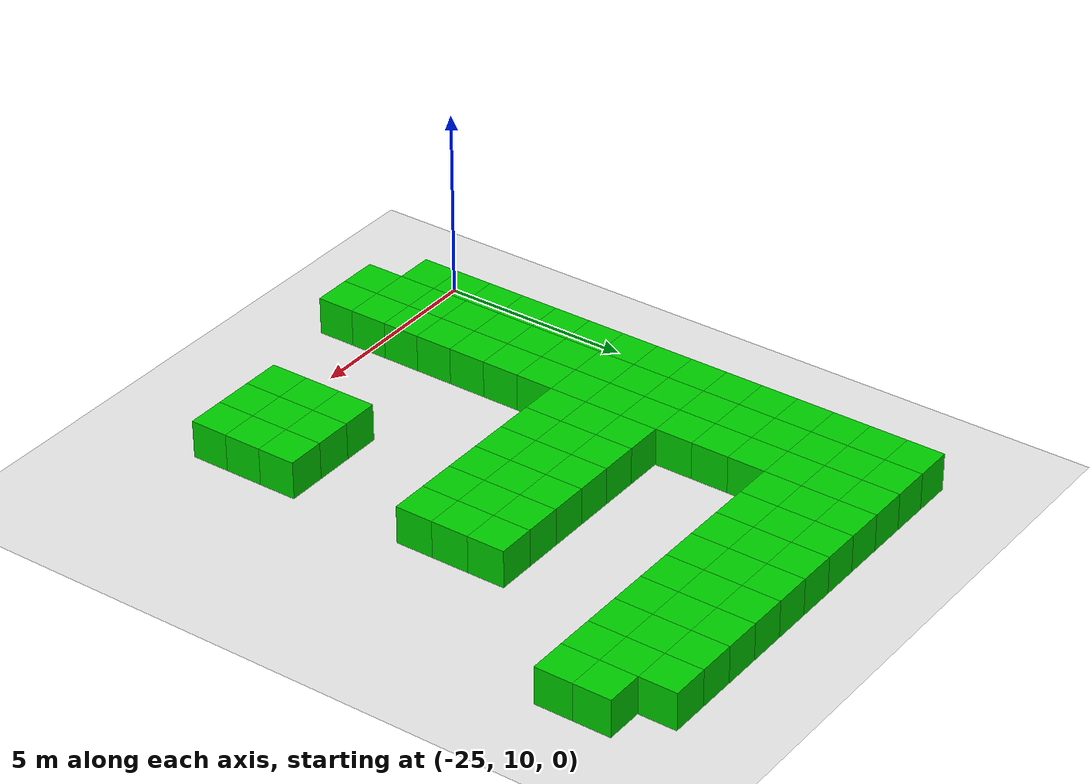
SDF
<sdf version="1.6">
 <world name="generated_maze">
  <model name="ground_plane">
   <static>true</static>
   <link name="link">
    <collision name="collision">
     <geometry><plane><normal>0 0 1</normal><size>100 100</size></plane></geometry>
    </collision>
    <visual name="visual">
     <geometry><plane><normal>0 0 1</normal><size>100 100</size></plane></geometry>
     <material>
      <ambient>0.9 0.9 0.9 1</ambient>
      <diffuse>0.9 0.9 0.9 1</diffuse>
      <specular>0.3 0.3 0.3 1</specular>
     </material>
    </visual>
   </link>
  </model>
  <model name="wall_0_0">
   <static>true</static>
   <pose>-24 24 0.5 0 0 0</pose>
   <link name="link">
    <collision name="collision"><geometry><box><size>1 1 1</size></box></geometry></collision>
    <visual name="visual">
     <geometry><box><size>1 1 1</size></box></geometry>
     <material>
      <ambient>0.0 0.8 0.0 1</ambient>
      <diffuse>0.0 0.8 0.0 1</diffuse>
      <specular>0.1 0.1 0.1 1</specular>
     </material>
    </visual>
   </link>
  </model>
  <model name="wall_0_1">
   <static>true</static>
   <pose>-23 24 0.5 0 0 0</pose>
   <link name="link">
    <collision name="collision"><geometry><box><size>1 1 1</size></box></geometry></collision>
    <visual name="visual">
     <geometry><box><size>1 1 1</size></box></geometry>
     <material>
      <ambient>0.0 0.8 0.0 1</ambient>
      <diffuse>0.0 0.8 0.0 1</diffuse>
      <specular>0.1 0.1 0.1 1</specular>
     </material>
    </visual>
   </link>
  </model>
  <model name="wall_0_2">
   <static>true</static>
   <pose>-22 24 0.5 0 0 0</pose>
   <link name="link">
    <collision name="collision"><geometry><box><size>1 1 1</size></box></geometry></collision>
    <visual name="visual">
     <geometry><box><size>1 1 1</size></box></geometry>
     <material>
      <ambient>0.0 0.8 0.0 1</ambient>
      <diffuse>0.0 0.8 0.0 1</diffuse>
      <specular>0.1 0.1 0.1 1</specular>
     </material>
    </visual>
   </link>
  </model>
  <model name="wall_0_3">
   <static>true</static>
   <pose>-21 24 0.5 0 0 0</pose>
   <link name="link">
    <collision name="collision"><geometry><box><size>1 1 1</size></box></geometry></collision>
    <visual name="visual">
     <geometry><box><size>1 1 1</size></box></geometry>
     <material>
      <ambient>0.0 0.8 0.0 1</ambient>
      <diffuse>0.0 0.8 0.0 1</diffuse>
      <specular>0.1 0.1 0.1 1</specular>
     </material>
    </visual>
   </link>
  </model>
  <model name="wall_0_4">
   <static>true</static>
   <pose>-20 24 0.5 0 0 0</pose>
   <link name="link">
    <collision name="collision"><geometry><box><size>1 1 1</size></box></geometry></collision>
    <visual name="visual">
     <geometry><box><size>1 1 1</size></box></geometry>
     <material>
      <ambient>0.0 0.8 0.0 1</ambient>
      <diffuse>0.0 0.8 0.0 1</diffuse>
      <specular>0.1 0.1 0.1 1</specular>
     </material>
    </visual>
   </link>
  </model>
  <model name="wall_0_5">
   <static>true</static>
   <pose>-19 24 0.5 0 0 0</pose>
   <link name="link">
    <collision name="collision"><geometry><box><size>1 1 1</size></box></geometry></collision>
    <visual name="visual">
     <geometry><box><size>1 1 1</size></box></geometry>
     <material>
      <ambient>0.0 0.8 0.0 1</ambient>
      <diffuse>0.0 0.8 0.0 1</diffuse>
      <specular>0.1 0.1 0.1 1</specular>
     </material>
    </visual>
   </link>
  </model>
  <model name="wall_0_6">
   <static>true</static>
   <pose>-18 24 0.5 0 0 0</pose>
   <link name="link">
    <collision name="collision"><geometry><box><size>1 1 1</size></box></geometry></collision>
    <visual name="visual">
     <geometry><box><size>1 1 1</size></box></geometry>
     <material>
      <ambient>0.0 0.8 0.0 1</ambient>
      <diffuse>0.0 0.8 0.0 1</diffuse>
      <specular>0.1 0.1 0.1 1</specular>
     </material>
    </visual>
   </link>
  </model>
  <model name="wall_0_7">
   <static>true</static>
   <pose>-17 24 0.5 0 0 0</pose>
   <link name="link">
    <collision name="collision"><geometry><box><size>1 1 1</size></box></geometry></collision>
    <visual name="visual">
     <geometry><box><size>1 1 1</size></box></geometry>
     <material>
      <ambient>0.0 0.8 0.0 1</ambient>
      <diffuse>0.0 0.8 0.0 1</diffuse>
      <specular>0.1 0.1 0.1 1</specular>
     </material>
    </visual>
   </link>
  </model>
  <model name="wall_0_8">
   <static>true</static>
   <pose>-16 24 0.5 0 0 0</pose>
   <link name="link">
    <collision name="collision"><geometry><box><size>1 1 1</size></box></geometry></collision>
    <visual name="visual">
     <geometry><box><size>1 1 1</size></box></geometry>
     <material>
      <ambient>0.0 0.8 0.0 1</ambient>
      <diffuse>0.0 0.8 0.0 1</diffuse>
      <specular>0.1 0.1 0.1 1</specular>
     </material>
    </visual>
   </link>
  </model>
  <model name="wall_0_9">
   <static>true</static>
   <pose>-15 24 0.5 0 0 0</pose>
   <link name="link">
    <collision name="collision"><geometry><box><size>1 1 1</size></box></geometry></collision>
    <visual name="visual">
     <geometry><box><size>1 1 1</size></box></geometry>
     <material>
      <ambient>0.0 0.8 0.0 1</ambient>
      <diffuse>0.0 0.8 0.0 1</diffuse>
      <specular>0.1 0.1 0.1 1</specular>
     </material>
    </visual>
   </link>
  </model>
  <model name="wall_0_10">
   <static>true</static>
   <pose>-14 24 0.5 0 0 0</pose>
   <link name="link">
    <collision name="collision"><geometry><box><size>1 1 1</size></box></geometry></collision>
    <visual name="visual">
     <geometry><box><size>1 1 1</size></box></geometry>
     <material>
      <ambient>0.0 0.8 0.0 1</ambient>
      <diffuse>0.0 0.8 0.0 1</diffuse>
      <specular>0.1 0.1 0.1 1</specular>
     </material>
    </visual>
   </link>
  </model>
  <model name="wall_1_0">
   <static>true</static>
   <pose>-24 23 0.5 0 0 0</pose>
   <link name="link">
    <collision name="collision"><geometry><box><size>1 1 1</size></box></geometry></collision>
    <visual name="visual">
     <geometry><box><size>1 1 1</size></box></geometry>
     <material>
      <ambient>0.0 0.8 0.0 1</ambient>
      <diffuse>0.0 0.8 0.0 1</diffuse>
      <specular>0.1 0.1 0.1 1</specular>
     </material>
    </visual>
   </link>
  </model>
  <model name="wall_1_1">
   <static>true</static>
   <pose>-23 23 0.5 0 0 0</pose>
   <link name="link">
    <collision name="collision"><geometry><box><size>1 1 1</size></box></geometry></collision>
    <visual name="visual">
     <geometry><box><size>1 1 1</size></box></geometry>
     <material>
      <ambient>0.0 0.8 0.0 1</ambient>
      <diffuse>0.0 0.8 0.0 1</diffuse>
      <specular>0.1 0.1 0.1 1</specular>
     </material>
    </visual>
   </link>
  </model>
  <model name="wall_1_2">
   <static>true</static>
   <pose>-22 23 0.5 0 0 0</pose>
   <link name="link">
    <collision name="collision"><geometry><box><size>1 1 1</size></box></geometry></collision>
    <visual name="visual">
     <geometry><box><size>1 1 1</size></box></geometry>
     <material>
      <ambient>0.0 0.8 0.0 1</ambient>
      <diffuse>0.0 0.8 0.0 1</diffuse>
      <specular>0.1 0.1 0.1 1</specular>
     </material>
    </visual>
   </link>
  </model>
  <model name="wall_1_3">
   <static>true</static>
   <pose>-21 23 0.5 0 0 0</pose>
   <link name="link">
    <collision name="collision"><geometry><box><size>1 1 1</size></box></geometry></collision>
    <visual name="visual">
     <geometry><box><size>1 1 1</size></box></geometry>
     <material>
      <ambient>0.0 0.8 0.0 1</ambient>
      <diffuse>0.0 0.8 0.0 1</diffuse>
      <specular>0.1 0.1 0.1 1</specular>
     </material>
    </visual>
   </link>
  </model>
  <model name="wall_1_4">
   <static>true</static>
   <pose>-20 23 0.5 0 0 0</pose>
   <link name="link">
    <collision name="collision"><geometry><box><size>1 1 1</size></box></geometry></collision>
    <visual name="visual">
     <geometry><box><size>1 1 1</size></box></geometry>
     <material>
      <ambient>0.0 0.8 0.0 1</ambient>
      <diffuse>0.0 0.8 0.0 1</diffuse>
      <specular>0.1 0.1 0.1 1</specular>
     </material>
    </visual>
   </link>
  </model>
  <model name="wall_1_5">
   <static>true</static>
   <pose>-19 23 0.5 0 0 0</pose>
   <link name="link">
    <collision name="collision"><geometry><box><size>1 1 1</size></box></geometry></collision>
    <visual name="visual">
     <geometry><box><size>1 1 1</size></box></geometry>
     <material>
      <ambient>0.0 0.8 0.0 1</ambient>
      <diffuse>0.0 0.8 0.0 1</diffuse>
      <specular>0.1 0.1 0.1 1</specular>
     </material>
    </visual>
   </link>
  </model>
  <model name="wall_1_6">
   <static>true</static>
   <pose>-18 23 0.5 0 0 0</pose>
   <link name="link">
    <collision name="collision"><geometry><box><size>1 1 1</size></box></geometry></collision>
    <visual name="visual">
     <geometry><box><size>1 1 1</size></box></geometry>
     <material>
      <ambient>0.0 0.8 0.0 1</ambient>
      <diffuse>0.0 0.8 0.0 1</diffuse>
      <specular>0.1 0.1 0.1 1</specular>
     </material>
    </visual>
   </link>
  </model>
  <model name="wall_1_7">
   <static>true</static>
   <pose>-17 23 0.5 0 0 0</pose>
   <link name="link">
    <collision name="collision"><geometry><box><size>1 1 1</size></box></geometry></collision>
    <visual name="visual">
     <geometry><box><size>1 1 1</size></box></geometry>
     <material>
      <ambient>0.0 0.8 0.0 1</ambient>
      <diffuse>0.0 0.8 0.0 1</diffuse>
      <specular>0.1 0.1 0.1 1</specular>
     </material>
    </visual>
   </link>
  </model>
  <model name="wall_1_8">
   <static>true</static>
   <pose>-16 23 0.5 0 0 0</pose>
   <link name="link">
    <collision name="collision"><geometry><box><size>1 1 1</size></box></geometry></collision>
    <visual name="visual">
     <geometry><box><size>1 1 1</size></box></geometry>
     <material>
      <ambient>0.0 0.8 0.0 1</ambient>
      <diffuse>0.0 0.8 0.0 1</diffuse>
      <specular>0.1 0.1 0.1 1</specular>
     </material>
    </visual>
   </link>
  </model>
  <model name="wall_1_9">
   <static>true</static>
   <pose>-15 23 0.5 0 0 0</pose>
   <link name="link">
    <collision name="collision"><geometry><box><size>1 1 1</size></box></geometry></collision>
    <visual name="visual">
     <geometry><box><size>1 1 1</size></box></geometry>
     <material>
      <ambient>0.0 0.8 0.0 1</ambient>
      <diffuse>0.0 0.8 0.0 1</diffuse>
      <specular>0.1 0.1 0.1 1</specular>
     </material>
    </visual>
   </link>
  </model>
  <model name="wall_1_10">
   <static>true</static>
   <pose>-14 23 0.5 0 0 0</pose>
   <link name="link">
    <collision name="collision"><geometry><box><size>1 1 1</size></box></geometry></collision>
    <visual name="visual">
     <geometry><box><size>1 1 1</size></box></geometry>
     <material>
      <ambient>0.0 0.8 0.0 1</ambient>
      <diffuse>0.0 0.8 0.0 1</diffuse>
      <specular>0.1 0.1 0.1 1</specular>
     </material>
    </visual>
   </link>
  </model>
  <model name="wall_1_11">
   <static>true</static>
   <pose>-13 23 0.5 0 0 0</pose>
   <link name="link">
    <collision name="collision"><geometry><box><size>1 1 1</size></box></geometry></collision>
    <visual name="visual">
     <geometry><box><size>1 1 1</size></box></geometry>
     <material>
      <ambient>0.0 0.8 0.0 1</ambient>
      <diffuse>0.0 0.8 0.0 1</diffuse>
      <specular>0.1 0.1 0.1 1</specular>
     </material>
    </visual>
   </link>
  </model>
  <model name="wall_2_0">
   <static>true</static>
   <pose>-24 22 0.5 0 0 0</pose>
   <link name="link">
    <collision name="collision"><geometry><box><size>1 1 1</size></box></geometry></collision>
    <visual name="visual">
     <geometry><box><size>1 1 1</size></box></geometry>
     <material>
      <ambient>0.0 0.8 0.0 1</ambient>
      <diffuse>0.0 0.8 0.0 1</diffuse>
      <specular>0.1 0.1 0.1 1</specular>
     </material>
    </visual>
   </link>
  </model>
  <model name="wall_2_1">
   <static>true</static>
   <pose>-23 22 0.5 0 0 0</pose>
   <link name="link">
    <collision name="collision"><geometry><box><size>1 1 1</size></box></geometry></collision>
    <visual name="visual">
     <geometry><box><size>1 1 1</size></box></geometry>
     <material>
      <ambient>0.0 0.8 0.0 1</ambient>
      <diffuse>0.0 0.8 0.0 1</diffuse>
      <specular>0.1 0.1 0.1 1</specular>
     </material>
    </visual>
   </link>
  </model>
  <model name="wall_2_2">
   <static>true</static>
   <pose>-22 22 0.5 0 0 0</pose>
   <link name="link">
    <collision name="collision"><geometry><box><size>1 1 1</size></box></geometry></collision>
    <visual name="visual">
     <geometry><box><size>1 1 1</size></box></geometry>
     <material>
      <ambient>0.0 0.8 0.0 1</ambient>
      <diffuse>0.0 0.8 0.0 1</diffuse>
      <specular>0.1 0.1 0.1 1</specular>
     </material>
    </visual>
   </link>
  </model>
  <model name="wall_2_3">
   <static>true</static>
   <pose>-21 22 0.5 0 0 0</pose>
   <link name="link">
    <collision name="collision"><geometry><box><size>1 1 1</size></box></geometry></collision>
    <visual name="visual">
     <geometry><box><size>1 1 1</size></box></geometry>
     <material>
      <ambient>0.0 0.8 0.0 1</ambient>
      <diffuse>0.0 0.8 0.0 1</diffuse>
      <specular>0.1 0.1 0.1 1</specular>
     </material>
    </visual>
   </link>
  </model>
  <model name="wall_2_4">
   <static>true</static>
   <pose>-20 22 0.5 0 0 0</pose>
   <link name="link">
    <collision name="collision"><geometry><box><size>1 1 1</size></box></geometry></collision>
    <visual name="visual">
     <geometry><box><size>1 1 1</size></box></geometry>
     <material>
      <ambient>0.0 0.8 0.0 1</ambient>
      <diffuse>0.0 0.8 0.0 1</diffuse>
      <specular>0.1 0.1 0.1 1</specular>
     </material>
    </visual>
   </link>
  </model>
  <model name="wall_2_5">
   <static>true</static>
   <pose>-19 22 0.5 0 0 0</pose>
   <link name="link">
    <collision name="collision"><geometry><box><size>1 1 1</size></box></geometry></collision>
    <visual name="visual">
     <geometry><box><size>1 1 1</size></box></geometry>
     <material>
      <ambient>0.0 0.8 0.0 1</ambient>
      <diffuse>0.0 0.8 0.0 1</diffuse>
      <specular>0.1 0.1 0.1 1</specular>
     </material>
    </visual>
   </link>
  </model>
  <model name="wall_2_6">
   <static>true</static>
   <pose>-18 22 0.5 0 0 0</pose>
   <link name="link">
    <collision name="collision"><geometry><box><size>1 1 1</size></box></geometry></collision>
    <visual name="visual">
     <geometry><box><size>1 1 1</size></box></geometry>
     <material>
      <ambient>0.0 0.8 0.0 1</ambient>
      <diffuse>0.0 0.8 0.0 1</diffuse>
      <specular>0.1 0.1 0.1 1</specular>
     </material>
    </visual>
   </link>
  </model>
  <model name="wall_2_7">
   <static>true</static>
   <pose>-17 22 0.5 0 0 0</pose>
   <link name="link">
    <collision name="collision"><geometry><box><size>1 1 1</size></box></geometry></collision>
    <visual name="visual">
     <geometry><box><size>1 1 1</size></box></geometry>
     <material>
      <ambient>0.0 0.8 0.0 1</ambient>
      <diffuse>0.0 0.8 0.0 1</diffuse>
      <specular>0.1 0.1 0.1 1</specular>
     </material>
    </visual>
   </link>
  </model>
  <model name="wall_2_8">
   <static>true</static>
   <pose>-16 22 0.5 0 0 0</pose>
   <link name="link">
    <collision name="collision"><geometry><box><size>1 1 1</size></box></geometry></collision>
    <visual name="visual">
     <geometry><box><size>1 1 1</size></box></geometry>
     <material>
      <ambient>0.0 0.8 0.0 1</ambient>
      <diffuse>0.0 0.8 0.0 1</diffuse>
      <specular>0.1 0.1 0.1 1</specular>
     </material>
    </visual>
   </link>
  </model>
  <model name="wall_2_9">
   <static>true</static>
   <pose>-15 22 0.5 0 0 0</pose>
   <link name="link">
    <collision name="collision"><geometry><box><size>1 1 1</size></box></geometry></collision>
    <visual name="visual">
     <geometry><box><size>1 1 1</size></box></geometry>
     <material>
      <ambient>0.0 0.8 0.0 1</ambient>
      <diffuse>0.0 0.8 0.0 1</diffuse>
      <specular>0.1 0.1 0.1 1</specular>
     </material>
    </visual>
   </link>
  </model>
  <model name="wall_2_10">
   <static>true</static>
   <pose>-14 22 0.5 0 0 0</pose>
   <link name="link">
    <collision name="collision"><geometry><box><size>1 1 1</size></box></geometry></collision>
    <visual name="visual">
     <geometry><box><size>1 1 1</size></box></geometry>
     <material>
      <ambient>0.0 0.8 0.0 1</ambient>
      <diffuse>0.0 0.8 0.0 1</diffuse>
      <specular>0.1 0.1 0.1 1</specular>
     </material>
    </visual>
   </link>
  </model>
  <model name="wall_2_11">
   <static>true</static>
   <pose>-13 22 0.5 0 0 0</pose>
   <link name="link">
    <collision name="collision"><geometry><box><size>1 1 1</size></box></geometry></collision>
    <visual name="visual">
     <geometry><box><size>1 1 1</size></box></geometry>
     <material>
      <ambient>0.0 0.8 0.0 1</ambient>
      <diffuse>0.0 0.8 0.0 1</diffuse>
      <specular>0.1 0.1 0.1 1</specular>
     </material>
    </visual>
   </link>
  </model>
  <model name="wall_3_0">
   <static>true</static>
   <pose>-24 21 0.5 0 0 0</pose>
   <link name="link">
    <collision name="collision"><geometry><box><size>1 1 1</size></box></geometry></collision>
    <visual name="visual">
     <geometry><box><size>1 1 1</size></box></geometry>
     <material>
      <ambient>0.0 0.8 0.0 1</ambient>
      <diffuse>0.0 0.8 0.0 1</diffuse>
      <specular>0.1 0.1 0.1 1</specular>
     </material>
    </visual>
   </link>
  </model>
  <model name="wall_3_1">
   <static>true</static>
   <pose>-23 21 0.5 0 0 0</pose>
   <link name="link">
    <collision name="collision"><geometry><box><size>1 1 1</size></box></geometry></collision>
    <visual name="visual">
     <geometry><box><size>1 1 1</size></box></geometry>
     <material>
      <ambient>0.0 0.8 0.0 1</ambient>
      <diffuse>0.0 0.8 0.0 1</diffuse>
      <specular>0.1 0.1 0.1 1</specular>
     </material>
    </visual>
   </link>
  </model>
  <model name="wall_3_2">
   <static>true</static>
   <pose>-22 21 0.5 0 0 0</pose>
   <link name="link">
    <collision name="collision"><geometry><box><size>1 1 1</size></box></geometry></collision>
    <visual name="visual">
     <geometry><box><size>1 1 1</size></box></geometry>
     <material>
      <ambient>0.0 0.8 0.0 1</ambient>
      <diffuse>0.0 0.8 0.0 1</diffuse>
      <specular>0.1 0.1 0.1 1</specular>
     </material>
    </visual>
   </link>
  </model>
  <model name="wall_4_0">
   <static>true</static>
   <pose>-24 20 0.5 0 0 0</pose>
   <link name="link">
    <collision name="collision"><geometry><box><size>1 1 1</size></box></geometry></collision>
    <visual name="visual">
     <geometry><box><size>1 1 1</size></box></geometry>
     <material>
      <ambient>0.0 0.8 0.0 1</ambient>
      <diffuse>0.0 0.8 0.0 1</diffuse>
      <specular>0.1 0.1 0.1 1</specular>
     </material>
    </visual>
   </link>
  </model>
  <model name="wall_4_1">
   <static>true</static>
   <pose>-23 20 0.5 0 0 0</pose>
   <link name="link">
    <collision name="collision"><geometry><box><size>1 1 1</size></box></geometry></collision>
    <visual name="visual">
     <geometry><box><size>1 1 1</size></box></geometry>
     <material>
      <ambient>0.0 0.8 0.0 1</ambient>
      <diffuse>0.0 0.8 0.0 1</diffuse>
      <specular>0.1 0.1 0.1 1</specular>
     </material>
    </visual>
   </link>
  </model>
  <model name="wall_4_2">
   <static>true</static>
   <pose>-22 20 0.5 0 0 0</pose>
   <link name="link">
    <collision name="collision"><geometry><box><size>1 1 1</size></box></geometry></collision>
    <visual name="visual">
     <geometry><box><size>1 1 1</size></box></geometry>
     <material>
      <ambient>0.0 0.8 0.0 1</ambient>
      <diffuse>0.0 0.8 0.0 1</diffuse>
      <specular>0.1 0.1 0.1 1</specular>
     </material>
    </visual>
   </link>
  </model>
  <model name="wall_5_0">
   <static>true</static>
   <pose>-24 19 0.5 0 0 0</pose>
   <link name="link">
    <collision name="collision"><geometry><box><size>1 1 1</size></box></geometry></collision>
    <visual name="visual">
     <geometry><box><size>1 1 1</size></box></geometry>
     <material>
      <ambient>0.0 0.8 0.0 1</ambient>
      <diffuse>0.0 0.8 0.0 1</diffuse>
      <specular>0.1 0.1 0.1 1</specular>
     </material>
    </visual>
   </link>
  </model>
  <model name="wall_5_1">
   <static>true</static>
   <pose>-23 19 0.5 0 0 0</pose>
   <link name="link">
    <collision name="collision"><geometry><box><size>1 1 1</size></box></geometry></collision>
    <visual name="visual">
     <geometry><box><size>1 1 1</size></box></geometry>
     <material>
      <ambient>0.0 0.8 0.0 1</ambient>
      <diffuse>0.0 0.8 0.0 1</diffuse>
      <specular>0.1 0.1 0.1 1</specular>
     </material>
    </visual>
   </link>
  </model>
  <model name="wall_5_2">
   <static>true</static>
   <pose>-22 19 0.5 0 0 0</pose>
   <link name="link">
    <collision name="collision"><geometry><box><size>1 1 1</size></box></geometry></collision>
    <visual name="visual">
     <geometry><box><size>1 1 1</size></box></geometry>
     <material>
      <ambient>0.0 0.8 0.0 1</ambient>
      <diffuse>0.0 0.8 0.0 1</diffuse>
      <specular>0.1 0.1 0.1 1</specular>
     </material>
    </visual>
   </link>
  </model>
  <model name="wall_6_0">
   <static>true</static>
   <pose>-24 18 0.5 0 0 0</pose>
   <link name="link">
    <collision name="collision"><geometry><box><size>1 1 1</size></box></geometry></collision>
    <visual name="visual">
     <geometry><box><size>1 1 1</size></box></geometry>
     <material>
      <ambient>0.0 0.8 0.0 1</ambient>
      <diffuse>0.0 0.8 0.0 1</diffuse>
      <specular>0.1 0.1 0.1 1</specular>
     </material>
    </visual>
   </link>
  </model>
  <model name="wall_6_1">
   <static>true</static>
   <pose>-23 18 0.5 0 0 0</pose>
   <link name="link">
    <collision name="collision"><geometry><box><size>1 1 1</size></box></geometry></collision>
    <visual name="visual">
     <geometry><box><size>1 1 1</size></box></geometry>
     <material>
      <ambient>0.0 0.8 0.0 1</ambient>
      <diffuse>0.0 0.8 0.0 1</diffuse>
      <specular>0.1 0.1 0.1 1</specular>
     </material>
    </visual>
   </link>
  </model>
  <model name="wall_6_2">
   <static>true</static>
   <pose>-22 18 0.5 0 0 0</pose>
   <link name="link">
    <collision name="collision"><geometry><box><size>1 1 1</size></box></geometry></collision>
    <visual name="visual">
     <geometry><box><size>1 1 1</size></box></geometry>
     <material>
      <ambient>0.0 0.8 0.0 1</ambient>
      <diffuse>0.0 0.8 0.0 1</diffuse>
      <specular>0.1 0.1 0.1 1</specular>
     </material>
    </visual>
   </link>
  </model>
  <model name="wall_6_3">
   <static>true</static>
   <pose>-21 18 0.5 0 0 0</pose>
   <link name="link">
    <collision name="collision"><geometry><box><size>1 1 1</size></box></geometry></collision>
    <visual name="visual">
     <geometry><box><size>1 1 1</size></box></geometry>
     <material>
      <ambient>0.0 0.8 0.0 1</ambient>
      <diffuse>0.0 0.8 0.0 1</diffuse>
      <specular>0.1 0.1 0.1 1</specular>
     </material>
    </visual>
   </link>
  </model>
  <model name="wall_6_4">
   <static>true</static>
   <pose>-20 18 0.5 0 0 0</pose>
   <link name="link">
    <collision name="collision"><geometry><box><size>1 1 1</size></box></geometry></collision>
    <visual name="visual">
     <geometry><box><size>1 1 1</size></box></geometry>
     <material>
      <ambient>0.0 0.8 0.0 1</ambient>
      <diffuse>0.0 0.8 0.0 1</diffuse>
      <specular>0.1 0.1 0.1 1</specular>
     </material>
    </visual>
   </link>
  </model>
  <model name="wall_6_5">
   <static>true</static>
   <pose>-19 18 0.5 0 0 0</pose>
   <link name="link">
    <collision name="collision"><geometry><box><size>1 1 1</size></box></geometry></collision>
    <visual name="visual">
     <geometry><box><size>1 1 1</size></box></geometry>
     <material>
      <ambient>0.0 0.8 0.0 1</ambient>
      <diffuse>0.0 0.8 0.0 1</diffuse>
      <specular>0.1 0.1 0.1 1</specular>
     </material>
    </visual>
   </link>
  </model>
  <model name="wall_6_6">
   <static>true</static>
   <pose>-18 18 0.5 0 0 0</pose>
   <link name="link">
    <collision name="collision"><geometry><box><size>1 1 1</size></box></geometry></collision>
    <visual name="visual">
     <geometry><box><size>1 1 1</size></box></geometry>
     <material>
      <ambient>0.0 0.8 0.0 1</ambient>
      <diffuse>0.0 0.8 0.0 1</diffuse>
      <specular>0.1 0.1 0.1 1</specular>
     </material>
    </visual>
   </link>
  </model>
  <model name="wall_6_7">
   <static>true</static>
   <pose>-17 18 0.5 0 0 0</pose>
   <link name="link">
    <collision name="collision"><geometry><box><size>1 1 1</size></box></geometry></collision>
    <visual name="visual">
     <geometry><box><size>1 1 1</size></box></geometry>
     <material>
      <ambient>0.0 0.8 0.0 1</ambient>
      <diffuse>0.0 0.8 0.0 1</diffuse>
      <specular>0.1 0.1 0.1 1</specular>
     </material>
    </visual>
   </link>
  </model>
  <model name="wall_6_8">
   <static>true</static>
   <pose>-16 18 0.5 0 0 0</pose>
   <link name="link">
    <collision name="collision"><geometry><box><size>1 1 1</size></box></geometry></collision>
    <visual name="visual">
     <geometry><box><size>1 1 1</size></box></geometry>
     <material>
      <ambient>0.0 0.8 0.0 1</ambient>
      <diffuse>0.0 0.8 0.0 1</diffuse>
      <specular>0.1 0.1 0.1 1</specular>
     </material>
    </visual>
   </link>
  </model>
  <model name="wall_7_0">
   <static>true</static>
   <pose>-24 17 0.5 0 0 0</pose>
   <link name="link">
    <collision name="collision"><geometry><box><size>1 1 1</size></box></geometry></collision>
    <visual name="visual">
     <geometry><box><size>1 1 1</size></box></geometry>
     <material>
      <ambient>0.0 0.8 0.0 1</ambient>
      <diffuse>0.0 0.8 0.0 1</diffuse>
      <specular>0.1 0.1 0.1 1</specular>
     </material>
    </visual>
   </link>
  </model>
  <model name="wall_7_1">
   <static>true</static>
   <pose>-23 17 0.5 0 0 0</pose>
   <link name="link">
    <collision name="collision"><geometry><box><size>1 1 1</size></box></geometry></collision>
    <visual name="visual">
     <geometry><box><size>1 1 1</size></box></geometry>
     <material>
      <ambient>0.0 0.8 0.0 1</ambient>
      <diffuse>0.0 0.8 0.0 1</diffuse>
      <specular>0.1 0.1 0.1 1</specular>
     </material>
    </visual>
   </link>
  </model>
  <model name="wall_7_2">
   <static>true</static>
   <pose>-22 17 0.5 0 0 0</pose>
   <link name="link">
    <collision name="collision"><geometry><box><size>1 1 1</size></box></geometry></collision>
    <visual name="visual">
     <geometry><box><size>1 1 1</size></box></geometry>
     <material>
      <ambient>0.0 0.8 0.0 1</ambient>
      <diffuse>0.0 0.8 0.0 1</diffuse>
      <specular>0.1 0.1 0.1 1</specular>
     </material>
    </visual>
   </link>
  </model>
  <model name="wall_7_3">
   <static>true</static>
   <pose>-21 17 0.5 0 0 0</pose>
   <link name="link">
    <collision name="collision"><geometry><box><size>1 1 1</size></box></geometry></collision>
    <visual name="visual">
     <geometry><box><size>1 1 1</size></box></geometry>
     <material>
      <ambient>0.0 0.8 0.0 1</ambient>
      <diffuse>0.0 0.8 0.0 1</diffuse>
      <specular>0.1 0.1 0.1 1</specular>
     </material>
    </visual>
   </link>
  </model>
  <model name="wall_7_4">
   <static>true</static>
   <pose>-20 17 0.5 0 0 0</pose>
   <link name="link">
    <collision name="collision"><geometry><box><size>1 1 1</size></box></geometry></collision>
    <visual name="visual">
     <geometry><box><size>1 1 1</size></box></geometry>
     <material>
      <ambient>0.0 0.8 0.0 1</ambient>
      <diffuse>0.0 0.8 0.0 1</diffuse>
      <specular>0.1 0.1 0.1 1</specular>
     </material>
    </visual>
   </link>
  </model>
  <model name="wall_7_5">
   <static>true</static>
   <pose>-19 17 0.5 0 0 0</pose>
   <link name="link">
    <collision name="collision"><geometry><box><size>1 1 1</size></box></geometry></collision>
    <visual name="visual">
     <geometry><box><size>1 1 1</size></box></geometry>
     <material>
      <ambient>0.0 0.8 0.0 1</ambient>
      <diffuse>0.0 0.8 0.0 1</diffuse>
      <specular>0.1 0.1 0.1 1</specular>
     </material>
    </visual>
   </link>
  </model>
  <model name="wall_7_6">
   <static>true</static>
   <pose>-18 17 0.5 0 0 0</pose>
   <link name="link">
    <collision name="collision"><geometry><box><size>1 1 1</size></box></geometry></collision>
    <visual name="visual">
     <geometry><box><size>1 1 1</size></box></geometry>
     <material>
      <ambient>0.0 0.8 0.0 1</ambient>
      <diffuse>0.0 0.8 0.0 1</diffuse>
      <specular>0.1 0.1 0.1 1</specular>
     </material>
    </visual>
   </link>
  </model>
  <model name="wall_7_7">
   <static>true</static>
   <pose>-17 17 0.5 0 0 0</pose>
   <link name="link">
    <collision name="collision"><geometry><box><size>1 1 1</size></box></geometry></collision>
    <visual name="visual">
     <geometry><box><size>1 1 1</size></box></geometry>
     <material>
      <ambient>0.0 0.8 0.0 1</ambient>
      <diffuse>0.0 0.8 0.0 1</diffuse>
      <specular>0.1 0.1 0.1 1</specular>
     </material>
    </visual>
   </link>
  </model>
  <model name="wall_7_8">
   <static>true</static>
   <pose>-16 17 0.5 0 0 0</pose>
   <link name="link">
    <collision name="collision"><geometry><box><size>1 1 1</size></box></geometry></collision>
    <visual name="visual">
     <geometry><box><size>1 1 1</size></box></geometry>
     <material>
      <ambient>0.0 0.8 0.0 1</ambient>
      <diffuse>0.0 0.8 0.0 1</diffuse>
      <specular>0.1 0.1 0.1 1</specular>
     </material>
    </visual>
   </link>
  </model>
  <model name="wall_8_0">
   <static>true</static>
   <pose>-24 16 0.5 0 0 0</pose>
   <link name="link">
    <collision name="collision"><geometry><box><size>1 1 1</size></box></geometry></collision>
    <visual name="visual">
     <geometry><box><size>1 1 1</size></box></geometry>
     <material>
      <ambient>0.0 0.8 0.0 1</ambient>
      <diffuse>0.0 0.8 0.0 1</diffuse>
      <specular>0.1 0.1 0.1 1</specular>
     </material>
    </visual>
   </link>
  </model>
  <model name="wall_8_1">
   <static>true</static>
   <pose>-23 16 0.5 0 0 0</pose>
   <link name="link">
    <collision name="collision"><geometry><box><size>1 1 1</size></box></geometry></collision>
    <visual name="visual">
     <geometry><box><size>1 1 1</size></box></geometry>
     <material>
      <ambient>0.0 0.8 0.0 1</ambient>
      <diffuse>0.0 0.8 0.0 1</diffuse>
      <specular>0.1 0.1 0.1 1</specular>
     </material>
    </visual>
   </link>
  </model>
  <model name="wall_8_2">
   <static>true</static>
   <pose>-22 16 0.5 0 0 0</pose>
   <link name="link">
    <collision name="collision"><geometry><box><size>1 1 1</size></box></geometry></collision>
    <visual name="visual">
     <geometry><box><size>1 1 1</size></box></geometry>
     <material>
      <ambient>0.0 0.8 0.0 1</ambient>
      <diffuse>0.0 0.8 0.0 1</diffuse>
      <specular>0.1 0.1 0.1 1</specular>
     </material>
    </visual>
   </link>
  </model>
  <model name="wall_8_3">
   <static>true</static>
   <pose>-21 16 0.5 0 0 0</pose>
   <link name="link">
    <collision name="collision"><geometry><box><size>1 1 1</size></box></geometry></collision>
    <visual name="visual">
     <geometry><box><size>1 1 1</size></box></geometry>
     <material>
      <ambient>0.0 0.8 0.0 1</ambient>
      <diffuse>0.0 0.8 0.0 1</diffuse>
      <specular>0.1 0.1 0.1 1</specular>
     </material>
    </visual>
   </link>
  </model>
  <model name="wall_8_4">
   <static>true</static>
   <pose>-20 16 0.5 0 0 0</pose>
   <link name="link">
    <collision name="collision"><geometry><box><size>1 1 1</size></box></geometry></collision>
    <visual name="visual">
     <geometry><box><size>1 1 1</size></box></geometry>
     <material>
      <ambient>0.0 0.8 0.0 1</ambient>
      <diffuse>0.0 0.8 0.0 1</diffuse>
      <specular>0.1 0.1 0.1 1</specular>
     </material>
    </visual>
   </link>
  </model>
  <model name="wall_8_5">
   <static>true</static>
   <pose>-19 16 0.5 0 0 0</pose>
   <link name="link">
    <collision name="collision"><geometry><box><size>1 1 1</size></box></geometry></collision>
    <visual name="visual">
     <geometry><box><size>1 1 1</size></box></geometry>
     <material>
      <ambient>0.0 0.8 0.0 1</ambient>
      <diffuse>0.0 0.8 0.0 1</diffuse>
      <specular>0.1 0.1 0.1 1</specular>
     </material>
    </visual>
   </link>
  </model>
  <model name="wall_8_6">
   <static>true</static>
   <pose>-18 16 0.5 0 0 0</pose>
   <link name="link">
    <collision name="collision"><geometry><box><size>1 1 1</size></box></geometry></collision>
    <visual name="visual">
     <geometry><box><size>1 1 1</size></box></geometry>
     <material>
      <ambient>0.0 0.8 0.0 1</ambient>
      <diffuse>0.0 0.8 0.0 1</diffuse>
      <specular>0.1 0.1 0.1 1</specular>
     </material>
    </visual>
   </link>
  </model>
  <model name="wall_8_7">
   <static>true</static>
   <pose>-17 16 0.5 0 0 0</pose>
   <link name="link">
    <collision name="collision"><geometry><box><size>1 1 1</size></box></geometry></collision>
    <visual name="visual">
     <geometry><box><size>1 1 1</size></box></geometry>
     <material>
      <ambient>0.0 0.8 0.0 1</ambient>
      <diffuse>0.0 0.8 0.0 1</diffuse>
      <specular>0.1 0.1 0.1 1</specular>
     </material>
    </visual>
   </link>
  </model>
  <model name="wall_8_8">
   <static>true</static>
   <pose>-16 16 0.5 0 0 0</pose>
   <link name="link">
    <collision name="collision"><geometry><box><size>1 1 1</size></box></geometry></collision>
    <visual name="visual">
     <geometry><box><size>1 1 1</size></box></geometry>
     <material>
      <ambient>0.0 0.8 0.0 1</ambient>
      <diffuse>0.0 0.8 0.0 1</diffuse>
      <specular>0.1 0.1 0.1 1</specular>
     </material>
    </visual>
   </link>
  </model>
  <model name="wall_9_0">
   <static>true</static>
   <pose>-24 15 0.5 0 0 0</pose>
   <link name="link">
    <collision name="collision"><geometry><box><size>1 1 1</size></box></geometry></collision>
    <visual name="visual">
     <geometry><box><size>1 1 1</size></box></geometry>
     <material>
      <ambient>0.0 0.8 0.0 1</ambient>
      <diffuse>0.0 0.8 0.0 1</diffuse>
      <specular>0.1 0.1 0.1 1</specular>
     </material>
    </visual>
   </link>
  </model>
  <model name="wall_9_1">
   <static>true</static>
   <pose>-23 15 0.5 0 0 0</pose>
   <link name="link">
    <collision name="collision"><geometry><box><size>1 1 1</size></box></geometry></collision>
    <visual name="visual">
     <geometry><box><size>1 1 1</size></box></geometry>
     <material>
      <ambient>0.0 0.8 0.0 1</ambient>
      <diffuse>0.0 0.8 0.0 1</diffuse>
      <specular>0.1 0.1 0.1 1</specular>
     </material>
    </visual>
   </link>
  </model>
  <model name="wall_9_2">
   <static>true</static>
   <pose>-22 15 0.5 0 0 0</pose>
   <link name="link">
    <collision name="collision"><geometry><box><size>1 1 1</size></box></geometry></collision>
    <visual name="visual">
     <geometry><box><size>1 1 1</size></box></geometry>
     <material>
      <ambient>0.0 0.8 0.0 1</ambient>
      <diffuse>0.0 0.8 0.0 1</diffuse>
      <specular>0.1 0.1 0.1 1</specular>
     </material>
    </visual>
   </link>
  </model>
  <model name="wall_10_0">
   <static>true</static>
   <pose>-24 14 0.5 0 0 0</pose>
   <link name="link">
    <collision name="collision"><geometry><box><size>1 1 1</size></box></geometry></collision>
    <visual name="visual">
     <geometry><box><size>1 1 1</size></box></geometry>
     <material>
      <ambient>0.0 0.8 0.0 1</ambient>
      <diffuse>0.0 0.8 0.0 1</diffuse>
      <specular>0.1 0.1 0.1 1</specular>
     </material>
    </visual>
   </link>
  </model>
  <model name="wall_10_1">
   <static>true</static>
   <pose>-23 14 0.5 0 0 0</pose>
   <link name="link">
    <collision name="collision"><geometry><box><size>1 1 1</size></box></geometry></collision>
    <visual name="visual">
     <geometry><box><size>1 1 1</size></box></geometry>
     <material>
      <ambient>0.0 0.8 0.0 1</ambient>
      <diffuse>0.0 0.8 0.0 1</diffuse>
      <specular>0.1 0.1 0.1 1</specular>
     </material>
    </visual>
   </link>
  </model>
  <model name="wall_10_2">
   <static>true</static>
   <pose>-22 14 0.5 0 0 0</pose>
   <link name="link">
    <collision name="collision"><geometry><box><size>1 1 1</size></box></geometry></collision>
    <visual name="visual">
     <geometry><box><size>1 1 1</size></box></geometry>
     <material>
      <ambient>0.0 0.8 0.0 1</ambient>
      <diffuse>0.0 0.8 0.0 1</diffuse>
      <specular>0.1 0.1 0.1 1</specular>
     </material>
    </visual>
   </link>
  </model>
  <model name="wall_11_0">
   <static>true</static>
   <pose>-24 13 0.5 0 0 0</pose>
   <link name="link">
    <collision name="collision"><geometry><box><size>1 1 1</size></box></geometry></collision>
    <visual name="visual">
     <geometry><box><size>1 1 1</size></box></geometry>
     <material>
      <ambient>0.0 0.8 0.0 1</ambient>
      <diffuse>0.0 0.8 0.0 1</diffuse>
      <specular>0.1 0.1 0.1 1</specular>
     </material>
    </visual>
   </link>
  </model>
  <model name="wall_11_1">
   <static>true</static>
   <pose>-23 13 0.5 0 0 0</pose>
   <link name="link">
    <collision name="collision"><geometry><box><size>1 1 1</size></box></geometry></collision>
    <visual name="visual">
     <geometry><box><size>1 1 1</size></box></geometry>
     <material>
      <ambient>0.0 0.8 0.0 1</ambient>
      <diffuse>0.0 0.8 0.0 1</diffuse>
      <specular>0.1 0.1 0.1 1</specular>
     </material>
    </visual>
   </link>
  </model>
  <model name="wall_11_2">
   <static>true</static>
   <pose>-22 13 0.5 0 0 0</pose>
   <link name="link">
    <collision name="collision"><geometry><box><size>1 1 1</size></box></geometry></collision>
    <visual name="visual">
     <geometry><box><size>1 1 1</size></box></geometry>
     <material>
      <ambient>0.0 0.8 0.0 1</ambient>
      <diffuse>0.0 0.8 0.0 1</diffuse>
      <specular>0.1 0.1 0.1 1</specular>
     </material>
    </visual>
   </link>
  </model>
  <model name="wall_12_0">
   <static>true</static>
   <pose>-24 12 0.5 0 0 0</pose>
   <link name="link">
    <collision name="collision"><geometry><box><size>1 1 1</size></box></geometry></collision>
    <visual name="visual">
     <geometry><box><size>1 1 1</size></box></geometry>
     <material>
      <ambient>0.0 0.8 0.0 1</ambient>
      <diffuse>0.0 0.8 0.0 1</diffuse>
      <specular>0.1 0.1 0.1 1</specular>
     </material>
    </visual>
   </link>
  </model>
  <model name="wall_12_1">
   <static>true</static>
   <pose>-23 12 0.5 0 0 0</pose>
   <link name="link">
    <collision name="collision"><geometry><box><size>1 1 1</size></box></geometry></collision>
    <visual name="visual">
     <geometry><box><size>1 1 1</size></box></geometry>
     <material>
      <ambient>0.0 0.8 0.0 1</ambient>
      <diffuse>0.0 0.8 0.0 1</diffuse>
      <specular>0.1 0.1 0.1 1</specular>
     </material>
    </visual>
   </link>
  </model>
  <model name="wall_12_2">
   <static>true</static>
   <pose>-22 12 0.5 0 0 0</pose>
   <link name="link">
    <collision name="collision"><geometry><box><size>1 1 1</size></box></geometry></collision>
    <visual name="visual">
     <geometry><box><size>1 1 1</size></box></geometry>
     <material>
      <ambient>0.0 0.8 0.0 1</ambient>
      <diffuse>0.0 0.8 0.0 1</diffuse>
      <specular>0.1 0.1 0.1 1</specular>
     </material>
    </visual>
   </link>
  </model>
  <model name="wall_12_6">
   <static>true</static>
   <pose>-18 12 0.5 0 0 0</pose>
   <link name="link">
    <collision name="collision"><geometry><box><size>1 1 1</size></box></geometry></collision>
    <visual name="visual">
     <geometry><box><size>1 1 1</size></box></geometry>
     <material>
      <ambient>0.0 0.8 0.0 1</ambient>
      <diffuse>0.0 0.8 0.0 1</diffuse>
      <specular>0.1 0.1 0.1 1</specular>
     </material>
    </visual>
   </link>
  </model>
  <model name="wall_12_7">
   <static>true</static>
   <pose>-17 12 0.5 0 0 0</pose>
   <link name="link">
    <collision name="collision"><geometry><box><size>1 1 1</size></box></geometry></collision>
    <visual name="visual">
     <geometry><box><size>1 1 1</size></box></geometry>
     <material>
      <ambient>0.0 0.8 0.0 1</ambient>
      <diffuse>0.0 0.8 0.0 1</diffuse>
      <specular>0.1 0.1 0.1 1</specular>
     </material>
    </visual>
   </link>
  </model>
  <model name="wall_12_8">
   <static>true</static>
   <pose>-16 12 0.5 0 0 0</pose>
   <link name="link">
    <collision name="collision"><geometry><box><size>1 1 1</size></box></geometry></collision>
    <visual name="visual">
     <geometry><box><size>1 1 1</size></box></geometry>
     <material>
      <ambient>0.0 0.8 0.0 1</ambient>
      <diffuse>0.0 0.8 0.0 1</diffuse>
      <specular>0.1 0.1 0.1 1</specular>
     </material>
    </visual>
   </link>
  </model>
  <model name="wall_13_0">
   <static>true</static>
   <pose>-24 11 0.5 0 0 0</pose>
   <link name="link">
    <collision name="collision"><geometry><box><size>1 1 1</size></box></geometry></collision>
    <visual name="visual">
     <geometry><box><size>1 1 1</size></box></geometry>
     <material>
      <ambient>0.0 0.8 0.0 1</ambient>
      <diffuse>0.0 0.8 0.0 1</diffuse>
      <specular>0.1 0.1 0.1 1</specular>
     </material>
    </visual>
   </link>
  </model>
  <model name="wall_13_1">
   <static>true</static>
   <pose>-23 11 0.5 0 0 0</pose>
   <link name="link">
    <collision name="collision"><geometry><box><size>1 1 1</size></box></geometry></collision>
    <visual name="visual">
     <geometry><box><size>1 1 1</size></box></geometry>
     <material>
      <ambient>0.0 0.8 0.0 1</ambient>
      <diffuse>0.0 0.8 0.0 1</diffuse>
      <specular>0.1 0.1 0.1 1</specular>
     </material>
    </visual>
   </link>
  </model>
  <model name="wall_13_2">
   <static>true</static>
   <pose>-22 11 0.5 0 0 0</pose>
   <link name="link">
    <collision name="collision"><geometry><box><size>1 1 1</size></box></geometry></collision>
    <visual name="visual">
     <geometry><box><size>1 1 1</size></box></geometry>
     <material>
      <ambient>0.0 0.8 0.0 1</ambient>
      <diffuse>0.0 0.8 0.0 1</diffuse>
      <specular>0.1 0.1 0.1 1</specular>
     </material>
    </visual>
   </link>
  </model>
  <model name="wall_13_6">
   <static>true</static>
   <pose>-18 11 0.5 0 0 0</pose>
   <link name="link">
    <collision name="collision"><geometry><box><size>1 1 1</size></box></geometry></collision>
    <visual name="visual">
     <geometry><box><size>1 1 1</size></box></geometry>
     <material>
      <ambient>0.0 0.8 0.0 1</ambient>
      <diffuse>0.0 0.8 0.0 1</diffuse>
      <specular>0.1 0.1 0.1 1</specular>
     </material>
    </visual>
   </link>
  </model>
  <model name="wall_13_7">
   <static>true</static>
   <pose>-17 11 0.5 0 0 0</pose>
   <link name="link">
    <collision name="collision"><geometry><box><size>1 1 1</size></box></geometry></collision>
    <visual name="visual">
     <geometry><box><size>1 1 1</size></box></geometry>
     <material>
      <ambient>0.0 0.8 0.0 1</ambient>
      <diffuse>0.0 0.8 0.0 1</diffuse>
      <specular>0.1 0.1 0.1 1</specular>
     </material>
    </visual>
   </link>
  </model>
  <model name="wall_13_8">
   <static>true</static>
   <pose>-16 11 0.5 0 0 0</pose>
   <link name="link">
    <collision name="collision"><geometry><box><size>1 1 1</size></box></geometry></collision>
    <visual name="visual">
     <geometry><box><size>1 1 1</size></box></geometry>
     <material>
      <ambient>0.0 0.8 0.0 1</ambient>
      <diffuse>0.0 0.8 0.0 1</diffuse>
      <specular>0.1 0.1 0.1 1</specular>
     </material>
    </visual>
   </link>
  </model>
  <model name="wall_14_0">
   <static>true</static>
   <pose>-24 10 0.5 0 0 0</pose>
   <link name="link">
    <collision name="collision"><geometry><box><size>1 1 1</size></box></geometry></collision>
    <visual name="visual">
     <geometry><box><size>1 1 1</size></box></geometry>
     <material>
      <ambient>0.0 0.8 0.0 1</ambient>
      <diffuse>0.0 0.8 0.0 1</diffuse>
      <specular>0.1 0.1 0.1 1</specular>
     </material>
    </visual>
   </link>
  </model>
  <model name="wall_14_1">
   <static>true</static>
   <pose>-23 10 0.5 0 0 0</pose>
   <link name="link">
    <collision name="collision"><geometry><box><size>1 1 1</size></box></geometry></collision>
    <visual name="visual">
     <geometry><box><size>1 1 1</size></box></geometry>
     <material>
      <ambient>0.0 0.8 0.0 1</ambient>
      <diffuse>0.0 0.8 0.0 1</diffuse>
      <specular>0.1 0.1 0.1 1</specular>
     </material>
    </visual>
   </link>
  </model>
  <model name="wall_14_2">
   <static>true</static>
   <pose>-22 10 0.5 0 0 0</pose>
   <link name="link">
    <collision name="collision"><geometry><box><size>1 1 1</size></box></geometry></collision>
    <visual name="visual">
     <geometry><box><size>1 1 1</size></box></geometry>
     <material>
      <ambient>0.0 0.8 0.0 1</ambient>
      <diffuse>0.0 0.8 0.0 1</diffuse>
      <specular>0.1 0.1 0.1 1</specular>
     </material>
    </visual>
   </link>
  </model>
  <model name="wall_14_6">
   <static>true</static>
   <pose>-18 10 0.5 0 0 0</pose>
   <link name="link">
    <collision name="collision"><geometry><box><size>1 1 1</size></box></geometry></collision>
    <visual name="visual">
     <geometry><box><size>1 1 1</size></box></geometry>
     <material>
      <ambient>0.0 0.8 0.0 1</ambient>
      <diffuse>0.0 0.8 0.0 1</diffuse>
      <specular>0.1 0.1 0.1 1</specular>
     </material>
    </visual>
   </link>
  </model>
  <model name="wall_14_7">
   <static>true</static>
   <pose>-17 10 0.5 0 0 0</pose>
   <link name="link">
    <collision name="collision"><geometry><box><size>1 1 1</size></box></geometry></collision>
    <visual name="visual">
     <geometry><box><size>1 1 1</size></box></geometry>
     <material>
      <ambient>0.0 0.8 0.0 1</ambient>
      <diffuse>0.0 0.8 0.0 1</diffuse>
      <specular>0.1 0.1 0.1 1</specular>
     </material>
    </visual>
   </link>
  </model>
  <model name="wall_14_8">
   <static>true</static>
   <pose>-16 10 0.5 0 0 0</pose>
   <link name="link">
    <collision name="collision"><geometry><box><size>1 1 1</size></box></geometry></collision>
    <visual name="visual">
     <geometry><box><size>1 1 1</size></box></geometry>
     <material>
      <ambient>0.0 0.8 0.0 1</ambient>
      <diffuse>0.0 0.8 0.0 1</diffuse>
      <specular>0.1 0.1 0.1 1</specular>
     </material>
    </visual>
   </link>
  </model>
  <model name="wall_15_1">
   <static>true</static>
   <pose>-23 9 0.5 0 0 0</pose>
   <link name="link">
    <collision name="collision"><geometry><box><size>1 1 1</size></box></geometry></collision>
    <visual name="visual">
     <geometry><box><size>1 1 1</size></box></geometry>
     <material>
      <ambient>0.0 0.8 0.0 1</ambient>
      <diffuse>0.0 0.8 0.0 1</diffuse>
      <specular>0.1 0.1 0.1 1</specular>
     </material>
    </visual>
   </link>
  </model>
  <model name="wall_15_2">
   <static>true</static>
   <pose>-22 9 0.5 0 0 0</pose>
   <link name="link">
    <collision name="collision"><geometry><box><size>1 1 1</size></box></geometry></collision>
    <visual name="visual">
     <geometry><box><size>1 1 1</size></box></geometry>
     <material>
      <ambient>0.0 0.8 0.0 1</ambient>
      <diffuse>0.0 0.8 0.0 1</diffuse>
      <specular>0.1 0.1 0.1 1</specular>
     </material>
    </visual>
   </link>
  </model>
 </world>
</sdf>
